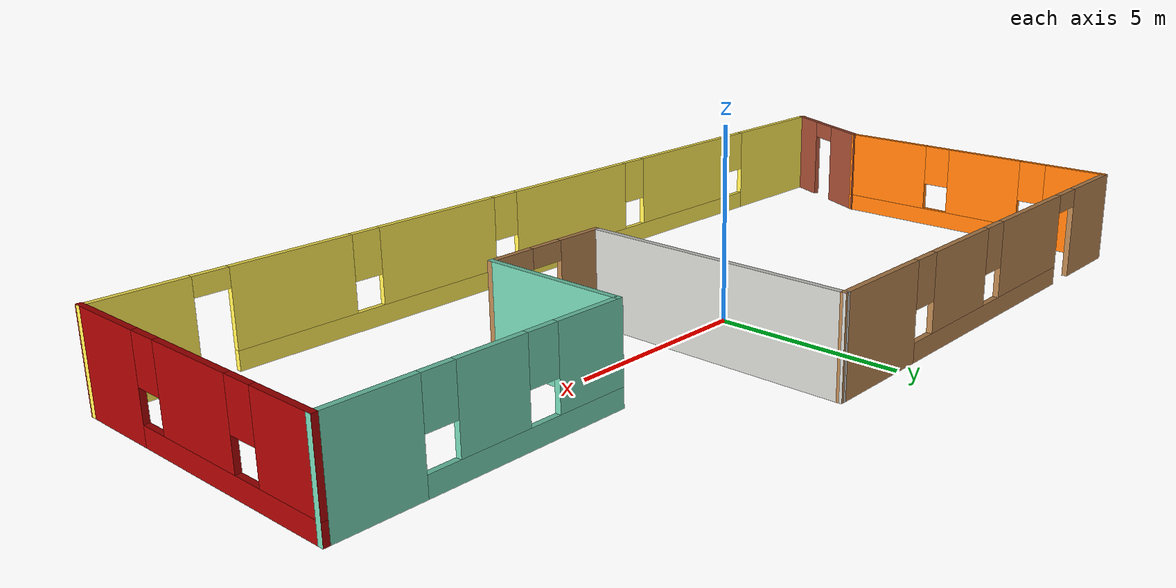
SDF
<?xml version='1.0'?>
<sdf version='1.7'>
  <model name='bilgehan_world_3'>
    <pose>0.261581 -0.716966 0 0 -0 0</pose>
    <link name='Wall_1'>
      <pose>0.011931 -5.67369 0 0 -0 0</pose>
      <visual name='Wall_1_Visual_0'>
        <pose>-10.9395 0 1.25 0 -0 0</pose>
        <geometry>
          <box>
            <size>3.62099 0.15 2.5</size>
          </box>
        </geometry>
        <material>
          <script>
            <uri>file://media/materials/scripts/gazebo.material</uri>
            <name>Gazebo/Grey</name>
          </script>
          <ambient>0.988235 0.913725 0.309804 1</ambient>
        </material>
        <meta>
          <layer>0</layer>
        </meta>
      </visual>
      <collision name='Wall_1_Collision_0'>
        <geometry>
          <box>
            <size>3.62099 0.15 2.5</size>
          </box>
        </geometry>
        <pose>-10.9395 0 1.25 0 -0 0</pose>
      </collision>
      <visual name='Wall_1_Visual_1'>
        <pose>11.5252 0 1.25 0 -0 0</pose>
        <geometry>
          <box>
            <size>2.44964 0.15 2.5</size>
          </box>
        </geometry>
        <material>
          <script>
            <uri>file://media/materials/scripts/gazebo.material</uri>
            <name>Gazebo/Grey</name>
          </script>
          <ambient>0.988235 0.913725 0.309804 1</ambient>
        </material>
        <meta>
          <layer>0</layer>
        </meta>
      </visual>
      <collision name='Wall_1_Collision_1'>
        <geometry>
          <box>
            <size>2.44964 0.15 2.5</size>
          </box>
        </geometry>
        <pose>11.5252 0 1.25 0 -0 0</pose>
      </collision>
      <visual name='Wall_1_Visual_2'>
        <pose>0.135676 0 0.25 0 -0 0</pose>
        <geometry>
          <box>
            <size>18.5294 0.15 0.5</size>
          </box>
        </geometry>
        <material>
          <script>
            <uri>file://media/materials/scripts/gazebo.material</uri>
            <name>Gazebo/Grey</name>
          </script>
          <ambient>0.988235 0.913725 0.309804 1</ambient>
        </material>
        <meta>
          <layer>0</layer>
        </meta>
      </visual>
      <collision name='Wall_1_Collision_2'>
        <geometry>
          <box>
            <size>18.5294 0.15 0.5</size>
          </box>
        </geometry>
        <pose>0.135676 0 0.25 0 -0 0</pose>
      </collision>
      <visual name='Wall_1_Visual_3'>
        <pose>-6.32102 0 1.5 0 -0 0</pose>
        <geometry>
          <box>
            <size>4.01597 0.15 2</size>
          </box>
        </geometry>
        <material>
          <script>
            <uri>file://media/materials/scripts/gazebo.material</uri>
            <name>Gazebo/Grey</name>
          </script>
          <ambient>0.988235 0.913725 0.309804 1</ambient>
        </material>
        <meta>
          <layer>0</layer>
        </meta>
      </visual>
      <collision name='Wall_1_Collision_3'>
        <geometry>
          <box>
            <size>4.01597 0.15 2</size>
          </box>
        </geometry>
        <pose>-6.32102 0 1.5 0 -0 0</pose>
      </collision>
      <visual name='Wall_1_Visual_4'>
        <pose>-1.34615 0 1.5 0 -0 0</pose>
        <geometry>
          <box>
            <size>4.33377 0.15 2</size>
          </box>
        </geometry>
        <material>
          <script>
            <uri>file://media/materials/scripts/gazebo.material</uri>
            <name>Gazebo/Grey</name>
          </script>
          <ambient>0.988235 0.913725 0.309804 1</ambient>
        </material>
        <meta>
          <layer>0</layer>
        </meta>
      </visual>
      <collision name='Wall_1_Collision_4'>
        <geometry>
          <box>
            <size>4.33377 0.15 2</size>
          </box>
        </geometry>
        <pose>-1.34615 0 1.5 0 -0 0</pose>
      </collision>
      <visual name='Wall_1_Visual_5'>
        <pose>3.48204 0 1.5 0 -0 0</pose>
        <geometry>
          <box>
            <size>3.72261 0.15 2</size>
          </box>
        </geometry>
        <material>
          <script>
            <uri>file://media/materials/scripts/gazebo.material</uri>
            <name>Gazebo/Grey</name>
          </script>
          <ambient>0.988235 0.913725 0.309804 1</ambient>
        </material>
        <meta>
          <layer>0</layer>
        </meta>
      </visual>
      <collision name='Wall_1_Collision_5'>
        <geometry>
          <box>
            <size>3.72261 0.15 2</size>
          </box>
        </geometry>
        <pose>3.48204 0 1.5 0 -0 0</pose>
      </collision>
      <visual name='Wall_1_Visual_6'>
        <pose>7.77185 0 1.5 0 -0 0</pose>
        <geometry>
          <box>
            <size>3.25702 0.15 2</size>
          </box>
        </geometry>
        <material>
          <script>
            <uri>file://media/materials/scripts/gazebo.material</uri>
            <name>Gazebo/Grey</name>
          </script>
          <ambient>0.988235 0.913725 0.309804 1</ambient>
        </material>
        <meta>
          <layer>0</layer>
        </meta>
      </visual>
      <collision name='Wall_1_Collision_6'>
        <geometry>
          <box>
            <size>3.25702 0.15 2</size>
          </box>
        </geometry>
        <pose>7.77185 0 1.5 0 -0 0</pose>
      </collision>
      <visual name='Wall_1_Visual_7'>
        <pose>-8.72901 0 1.9 0 -0 0</pose>
        <geometry>
          <box>
            <size>0.8 0.15 1.2</size>
          </box>
        </geometry>
        <material>
          <script>
            <uri>file://media/materials/scripts/gazebo.material</uri>
            <name>Gazebo/Grey</name>
          </script>
          <ambient>0.988235 0.913725 0.309804 1</ambient>
        </material>
        <meta>
          <layer>0</layer>
        </meta>
      </visual>
      <collision name='Wall_1_Collision_7'>
        <geometry>
          <box>
            <size>0.8 0.15 1.2</size>
          </box>
        </geometry>
        <pose>-8.72901 0 1.9 0 -0 0</pose>
      </collision>
      <visual name='Wall_1_Visual_8'>
        <pose>-3.91304 0 1.9 0 -0 0</pose>
        <geometry>
          <box>
            <size>0.8 0.15 1.2</size>
          </box>
        </geometry>
        <material>
          <script>
            <uri>file://media/materials/scripts/gazebo.material</uri>
            <name>Gazebo/Grey</name>
          </script>
          <ambient>0.988235 0.913725 0.309804 1</ambient>
        </material>
        <meta>
          <layer>0</layer>
        </meta>
      </visual>
      <collision name='Wall_1_Collision_8'>
        <geometry>
          <box>
            <size>0.8 0.15 1.2</size>
          </box>
        </geometry>
        <pose>-3.91304 0 1.9 0 -0 0</pose>
      </collision>
      <visual name='Wall_1_Visual_9'>
        <pose>1.22073 0 1.9 0 -0 0</pose>
        <geometry>
          <box>
            <size>0.8 0.15 1.2</size>
          </box>
        </geometry>
        <material>
          <script>
            <uri>file://media/materials/scripts/gazebo.material</uri>
            <name>Gazebo/Grey</name>
          </script>
          <ambient>0.988235 0.913725 0.309804 1</ambient>
        </material>
        <meta>
          <layer>0</layer>
        </meta>
      </visual>
      <collision name='Wall_1_Collision_9'>
        <geometry>
          <box>
            <size>0.8 0.15 1.2</size>
          </box>
        </geometry>
        <pose>1.22073 0 1.9 0 -0 0</pose>
      </collision>
      <visual name='Wall_1_Visual_10'>
        <pose>5.74334 0 1.9 0 -0 0</pose>
        <geometry>
          <box>
            <size>0.8 0.15 1.2</size>
          </box>
        </geometry>
        <material>
          <script>
            <uri>file://media/materials/scripts/gazebo.material</uri>
            <name>Gazebo/Grey</name>
          </script>
          <ambient>0.988235 0.913725 0.309804 1</ambient>
        </material>
        <meta>
          <layer>0</layer>
        </meta>
      </visual>
      <collision name='Wall_1_Collision_10'>
        <geometry>
          <box>
            <size>0.8 0.15 1.2</size>
          </box>
        </geometry>
        <pose>5.74334 0 1.9 0 -0 0</pose>
      </collision>
      <visual name='Wall_1_Visual_11'>
        <pose>9.85036 0 2.25 0 -0 0</pose>
        <geometry>
          <box>
            <size>0.9 0.15 0.5</size>
          </box>
        </geometry>
        <material>
          <script>
            <uri>file://media/materials/scripts/gazebo.material</uri>
            <name>Gazebo/Grey</name>
          </script>
          <ambient>0.988235 0.913725 0.309804 1</ambient>
        </material>
        <meta>
          <layer>0</layer>
        </meta>
      </visual>
      <collision name='Wall_1_Collision_11'>
        <geometry>
          <box>
            <size>0.9 0.15 0.5</size>
          </box>
        </geometry>
        <pose>9.85036 0 2.25 0 -0 0</pose>
      </collision>
    </link>
    <link name='Wall_11'>
      <pose>-11.3281 1.53331 0 0 -0 -1.5708</pose>
      <visual name='Wall_11_Visual_0'>
        <pose>-3.34478 0 1.25 0 -0 0</pose>
        <geometry>
          <box>
            <size>1.81045 0.15 2.5</size>
          </box>
        </geometry>
        <material>
          <script>
            <uri>file://media/materials/scripts/gazebo.material</uri>
            <name>Gazebo/Grey</name>
          </script>
          <ambient>0.996078 0.47451 0.0196078 1</ambient>
        </material>
        <meta>
          <layer>0</layer>
        </meta>
      </visual>
      <collision name='Wall_11_Collision_0'>
        <geometry>
          <box>
            <size>1.81045 0.15 2.5</size>
          </box>
        </geometry>
        <pose>-3.34478 0 1.25 0 -0 0</pose>
      </collision>
      <visual name='Wall_11_Visual_1'>
        <pose>0.905224 0 0.25 0 -0 0</pose>
        <geometry>
          <box>
            <size>6.68955 0.15 0.5</size>
          </box>
        </geometry>
        <material>
          <script>
            <uri>file://media/materials/scripts/gazebo.material</uri>
            <name>Gazebo/Grey</name>
          </script>
          <ambient>0.996078 0.47451 0.0196078 1</ambient>
        </material>
        <meta>
          <layer>0</layer>
        </meta>
      </visual>
      <collision name='Wall_11_Collision_1'>
        <geometry>
          <box>
            <size>6.68955 0.15 0.5</size>
          </box>
        </geometry>
        <pose>0.905224 0 0.25 0 -0 0</pose>
      </collision>
      <visual name='Wall_11_Visual_2'>
        <pose>-0.465446 0 1.5 0 -0 0</pose>
        <geometry>
          <box>
            <size>2.34821 0.15 2</size>
          </box>
        </geometry>
        <material>
          <script>
            <uri>file://media/materials/scripts/gazebo.material</uri>
            <name>Gazebo/Grey</name>
          </script>
          <ambient>0.996078 0.47451 0.0196078 1</ambient>
        </material>
        <meta>
          <layer>0</layer>
        </meta>
      </visual>
      <collision name='Wall_11_Collision_2'>
        <geometry>
          <box>
            <size>2.34821 0.15 2</size>
          </box>
        </geometry>
        <pose>-0.465446 0 1.5 0 -0 0</pose>
      </collision>
      <visual name='Wall_11_Visual_3'>
        <pose>2.87933 0 1.5 0 -0 0</pose>
        <geometry>
          <box>
            <size>2.74134 0.15 2</size>
          </box>
        </geometry>
        <material>
          <script>
            <uri>file://media/materials/scripts/gazebo.material</uri>
            <name>Gazebo/Grey</name>
          </script>
          <ambient>0.996078 0.47451 0.0196078 1</ambient>
        </material>
        <meta>
          <layer>0</layer>
        </meta>
      </visual>
      <collision name='Wall_11_Collision_3'>
        <geometry>
          <box>
            <size>2.74134 0.15 2</size>
          </box>
        </geometry>
        <pose>2.87933 0 1.5 0 -0 0</pose>
      </collision>
      <visual name='Wall_11_Visual_4'>
        <pose>-2.03955 0 1.9 0 -0 0</pose>
        <geometry>
          <box>
            <size>0.8 0.15 1.2</size>
          </box>
        </geometry>
        <material>
          <script>
            <uri>file://media/materials/scripts/gazebo.material</uri>
            <name>Gazebo/Grey</name>
          </script>
          <ambient>0.996078 0.47451 0.0196078 1</ambient>
        </material>
        <meta>
          <layer>0</layer>
        </meta>
      </visual>
      <collision name='Wall_11_Collision_4'>
        <geometry>
          <box>
            <size>0.8 0.15 1.2</size>
          </box>
        </geometry>
        <pose>-2.03955 0 1.9 0 -0 0</pose>
      </collision>
      <visual name='Wall_11_Visual_5'>
        <pose>1.10866 0 1.9 0 -0 0</pose>
        <geometry>
          <box>
            <size>0.8 0.15 1.2</size>
          </box>
        </geometry>
        <material>
          <script>
            <uri>file://media/materials/scripts/gazebo.material</uri>
            <name>Gazebo/Grey</name>
          </script>
          <ambient>0.996078 0.47451 0.0196078 1</ambient>
        </material>
        <meta>
          <layer>0</layer>
        </meta>
      </visual>
      <collision name='Wall_11_Collision_5'>
        <geometry>
          <box>
            <size>0.8 0.15 1.2</size>
          </box>
        </geometry>
        <pose>1.10866 0 1.9 0 -0 0</pose>
      </collision>
    </link>
    <link name='Wall_12'>
      <pose>-11.9956 -4.15769 0 0 -0 -1.98555</pose>
      <visual name='Wall_12_Visual_0'>
        <pose>-1.0289 0 1.25 0 -0 0</pose>
        <geometry>
          <box>
            <size>1.40508 0.15 2.5</size>
          </box>
        </geometry>
        <material>
          <script>
            <uri>file://media/materials/scripts/gazebo.material</uri>
            <name>Gazebo/Bricks</name>
          </script>
          <ambient>1 1 1 1</ambient>
        </material>
        <meta>
          <layer>0</layer>
        </meta>
      </visual>
      <collision name='Wall_12_Collision_0'>
        <geometry>
          <box>
            <size>1.40508 0.15 2.5</size>
          </box>
        </geometry>
        <pose>-1.0289 0 1.25 0 -0 0</pose>
      </collision>
      <visual name='Wall_12_Visual_1'>
        <pose>1.15254 0 1.25 0 -0 0</pose>
        <geometry>
          <box>
            <size>1.1578 0.15 2.5</size>
          </box>
        </geometry>
        <material>
          <script>
            <uri>file://media/materials/scripts/gazebo.material</uri>
            <name>Gazebo/Bricks</name>
          </script>
          <ambient>1 1 1 1</ambient>
        </material>
        <meta>
          <layer>0</layer>
        </meta>
      </visual>
      <collision name='Wall_12_Collision_1'>
        <geometry>
          <box>
            <size>1.1578 0.15 2.5</size>
          </box>
        </geometry>
        <pose>1.15254 0 1.25 0 -0 0</pose>
      </collision>
      <visual name='Wall_12_Visual_2'>
        <pose>0.123638 0 2.25 0 -0 0</pose>
        <geometry>
          <box>
            <size>0.9 0.15 0.5</size>
          </box>
        </geometry>
        <material>
          <script>
            <uri>file://media/materials/scripts/gazebo.material</uri>
            <name>Gazebo/Bricks</name>
          </script>
          <ambient>1 1 1 1</ambient>
        </material>
        <meta>
          <layer>0</layer>
        </meta>
      </visual>
      <collision name='Wall_12_Collision_2'>
        <geometry>
          <box>
            <size>0.9 0.15 0.5</size>
          </box>
        </geometry>
        <pose>0.123638 0 2.25 0 -0 0</pose>
      </collision>
    </link>
    <link name='Wall_2'>
      <pose>12.6869 -1.69365 0 0 -0 1.5708</pose>
      <visual name='Wall_2_Visual_0'>
        <pose>-2.95978 0 1.25 0 -0 0</pose>
        <geometry>
          <box>
            <size>2.26047 0.15 2.5</size>
          </box>
        </geometry>
        <material>
          <script>
            <uri>file://media/materials/scripts/gazebo.material</uri>
            <name>Gazebo/Grey</name>
          </script>
          <ambient>0.643137 0 0 1</ambient>
        </material>
        <meta>
          <layer>0</layer>
        </meta>
      </visual>
      <collision name='Wall_2_Collision_0'>
        <geometry>
          <box>
            <size>2.26047 0.15 2.5</size>
          </box>
        </geometry>
        <pose>-2.95978 0 1.25 0 -0 0</pose>
      </collision>
      <visual name='Wall_2_Visual_1'>
        <pose>1.13024 0 0.25 0 -0 0</pose>
        <geometry>
          <box>
            <size>5.91957 0.15 0.5</size>
          </box>
        </geometry>
        <material>
          <script>
            <uri>file://media/materials/scripts/gazebo.material</uri>
            <name>Gazebo/Grey</name>
          </script>
          <ambient>0.643137 0 0 1</ambient>
        </material>
        <meta>
          <layer>0</layer>
        </meta>
      </visual>
      <collision name='Wall_2_Collision_1'>
        <geometry>
          <box>
            <size>5.91957 0.15 0.5</size>
          </box>
        </geometry>
        <pose>1.13024 0 0.25 0 -0 0</pose>
      </collision>
      <visual name='Wall_2_Visual_2'>
        <pose>0.212152 0 1.5 0 -0 0</pose>
        <geometry>
          <box>
            <size>2.48339 0.15 2</size>
          </box>
        </geometry>
        <material>
          <script>
            <uri>file://media/materials/scripts/gazebo.material</uri>
            <name>Gazebo/Grey</name>
          </script>
          <ambient>0.643137 0 0 1</ambient>
        </material>
        <meta>
          <layer>0</layer>
        </meta>
      </visual>
      <collision name='Wall_2_Collision_2'>
        <geometry>
          <box>
            <size>2.48339 0.15 2</size>
          </box>
        </geometry>
        <pose>0.212152 0 1.5 0 -0 0</pose>
      </collision>
      <visual name='Wall_2_Visual_3'>
        <pose>3.17193 0 1.5 0 -0 0</pose>
        <geometry>
          <box>
            <size>1.83617 0.15 2</size>
          </box>
        </geometry>
        <material>
          <script>
            <uri>file://media/materials/scripts/gazebo.material</uri>
            <name>Gazebo/Grey</name>
          </script>
          <ambient>0.643137 0 0 1</ambient>
        </material>
        <meta>
          <layer>0</layer>
        </meta>
      </visual>
      <collision name='Wall_2_Collision_3'>
        <geometry>
          <box>
            <size>1.83617 0.15 2</size>
          </box>
        </geometry>
        <pose>3.17193 0 1.5 0 -0 0</pose>
      </collision>
      <visual name='Wall_2_Visual_4'>
        <pose>-1.42955 0 1.9 0 -0 0</pose>
        <geometry>
          <box>
            <size>0.8 0.15 1.2</size>
          </box>
        </geometry>
        <material>
          <script>
            <uri>file://media/materials/scripts/gazebo.material</uri>
            <name>Gazebo/Grey</name>
          </script>
          <ambient>0.643137 0 0 1</ambient>
        </material>
        <meta>
          <layer>0</layer>
        </meta>
      </visual>
      <collision name='Wall_2_Collision_4'>
        <geometry>
          <box>
            <size>0.8 0.15 1.2</size>
          </box>
        </geometry>
        <pose>-1.42955 0 1.9 0 -0 0</pose>
      </collision>
      <visual name='Wall_2_Visual_5'>
        <pose>1.85385 0 1.9 0 -0 0</pose>
        <geometry>
          <box>
            <size>0.8 0.15 1.2</size>
          </box>
        </geometry>
        <material>
          <script>
            <uri>file://media/materials/scripts/gazebo.material</uri>
            <name>Gazebo/Grey</name>
          </script>
          <ambient>0.643137 0 0 1</ambient>
        </material>
        <meta>
          <layer>0</layer>
        </meta>
      </visual>
      <collision name='Wall_2_Collision_5'>
        <geometry>
          <box>
            <size>0.8 0.15 1.2</size>
          </box>
        </geometry>
        <pose>1.85385 0 1.9 0 -0 0</pose>
      </collision>
    </link>
    <link name='Wall_3'>
      <pose>9.01193 2.32137 0 0 -0 3.14159</pose>
      <visual name='Wall_3_Visual_0'>
        <pose>-2.61825 0 1.25 0 -0 0</pose>
        <geometry>
          <box>
            <size>2.2635 0.15 2.5</size>
          </box>
        </geometry>
        <material>
          <script>
            <uri>file://media/materials/scripts/gazebo.material</uri>
            <name>Gazebo/Grey</name>
          </script>
          <ambient>0.435294 0.796078 0.67451 1</ambient>
        </material>
        <meta>
          <layer>0</layer>
        </meta>
      </visual>
      <collision name='Wall_3_Collision_0'>
        <geometry>
          <box>
            <size>2.2635 0.15 2.5</size>
          </box>
        </geometry>
        <pose>-2.61825 0 1.25 0 -0 0</pose>
      </collision>
      <visual name='Wall_3_Visual_1'>
        <pose>1.13175 0 0.25 0 -0 0</pose>
        <geometry>
          <box>
            <size>5.2365 0.15 0.5</size>
          </box>
        </geometry>
        <material>
          <script>
            <uri>file://media/materials/scripts/gazebo.material</uri>
            <name>Gazebo/Grey</name>
          </script>
          <ambient>0.435294 0.796078 0.67451 1</ambient>
        </material>
        <meta>
          <layer>0</layer>
        </meta>
      </visual>
      <collision name='Wall_3_Collision_1'>
        <geometry>
          <box>
            <size>5.2365 0.15 0.5</size>
          </box>
        </geometry>
        <pose>1.13175 0 0.25 0 -0 0</pose>
      </collision>
      <visual name='Wall_3_Visual_2'>
        <pose>0.2015 0 1.5 0 -0 0</pose>
        <geometry>
          <box>
            <size>1.776 0.15 2</size>
          </box>
        </geometry>
        <material>
          <script>
            <uri>file://media/materials/scripts/gazebo.material</uri>
            <name>Gazebo/Grey</name>
          </script>
          <ambient>0.435294 0.796078 0.67451 1</ambient>
        </material>
        <meta>
          <layer>0</layer>
        </meta>
      </visual>
      <collision name='Wall_3_Collision_2'>
        <geometry>
          <box>
            <size>1.776 0.15 2</size>
          </box>
        </geometry>
        <pose>0.2015 0 1.5 0 -0 0</pose>
      </collision>
      <visual name='Wall_3_Visual_3'>
        <pose>2.81975 0 1.5 0 -0 0</pose>
        <geometry>
          <box>
            <size>1.8605 0.15 2</size>
          </box>
        </geometry>
        <material>
          <script>
            <uri>file://media/materials/scripts/gazebo.material</uri>
            <name>Gazebo/Grey</name>
          </script>
          <ambient>0.435294 0.796078 0.67451 1</ambient>
        </material>
        <meta>
          <layer>0</layer>
        </meta>
      </visual>
      <collision name='Wall_3_Collision_3'>
        <geometry>
          <box>
            <size>1.8605 0.15 2</size>
          </box>
        </geometry>
        <pose>2.81975 0 1.5 0 -0 0</pose>
      </collision>
      <visual name='Wall_3_Visual_4'>
        <pose>-1.0865 0 1.9 0 -0 0</pose>
        <geometry>
          <box>
            <size>0.8 0.15 1.2</size>
          </box>
        </geometry>
        <material>
          <script>
            <uri>file://media/materials/scripts/gazebo.material</uri>
            <name>Gazebo/Grey</name>
          </script>
          <ambient>0.435294 0.796078 0.67451 1</ambient>
        </material>
        <meta>
          <layer>0</layer>
        </meta>
      </visual>
      <collision name='Wall_3_Collision_4'>
        <geometry>
          <box>
            <size>0.8 0.15 1.2</size>
          </box>
        </geometry>
        <pose>-1.0865 0 1.9 0 -0 0</pose>
      </collision>
      <visual name='Wall_3_Visual_5'>
        <pose>1.4895 0 1.9 0 -0 0</pose>
        <geometry>
          <box>
            <size>0.8 0.15 1.2</size>
          </box>
        </geometry>
        <material>
          <script>
            <uri>file://media/materials/scripts/gazebo.material</uri>
            <name>Gazebo/Grey</name>
          </script>
          <ambient>0.435294 0.796078 0.67451 1</ambient>
        </material>
        <meta>
          <layer>0</layer>
        </meta>
      </visual>
      <collision name='Wall_3_Collision_5'>
        <geometry>
          <box>
            <size>0.8 0.15 1.2</size>
          </box>
        </geometry>
        <pose>1.4895 0 1.9 0 -0 0</pose>
      </collision>
    </link>
    <link name='Wall_4'>
      <collision name='Wall_4_Collision'>
        <geometry>
          <box>
            <size>4 0.15 2.5</size>
          </box>
        </geometry>
        <pose>0 0 1.25 0 -0 0</pose>
      </collision>
      <visual name='Wall_4_Visual'>
        <pose>0 0 1.25 0 -0 0</pose>
        <geometry>
          <box>
            <size>4 0.15 2.5</size>
          </box>
        </geometry>
        <material>
          <script>
            <uri>file://media/materials/scripts/gazebo.material</uri>
            <name>Gazebo/Grey</name>
          </script>
          <ambient>0.435294 0.796078 0.67451 1</ambient>
        </material>
        <meta>
          <layer>0</layer>
        </meta>
      </visual>
      <pose>5.33693 0.39637 0 0 -0 -1.5708</pose>
    </link>
    <link name='Wall_5'>
      <pose>3.66193 -1.52863 0 0 -0 3.14159</pose>
      <visual name='Wall_5_Visual_0'>
        <pose>-1.1165 0 1.25 0 -0 0</pose>
        <geometry>
          <box>
            <size>1.267 0.15 2.5</size>
          </box>
        </geometry>
        <material>
          <script>
            <uri>file://media/materials/scripts/gazebo.material</uri>
            <name>Gazebo/Wood</name>
          </script>
          <ambient>1 1 1 1</ambient>
        </material>
        <meta>
          <layer>0</layer>
        </meta>
      </visual>
      <collision name='Wall_5_Collision_0'>
        <geometry>
          <box>
            <size>1.267 0.15 2.5</size>
          </box>
        </geometry>
        <pose>-1.1165 0 1.25 0 -0 0</pose>
      </collision>
      <visual name='Wall_5_Visual_1'>
        <pose>1.0835 0 1.25 0 -0 0</pose>
        <geometry>
          <box>
            <size>1.333 0.15 2.5</size>
          </box>
        </geometry>
        <material>
          <script>
            <uri>file://media/materials/scripts/gazebo.material</uri>
            <name>Gazebo/Wood</name>
          </script>
          <ambient>1 1 1 1</ambient>
        </material>
        <meta>
          <layer>0</layer>
        </meta>
      </visual>
      <collision name='Wall_5_Collision_1'>
        <geometry>
          <box>
            <size>1.333 0.15 2.5</size>
          </box>
        </geometry>
        <pose>1.0835 0 1.25 0 -0 0</pose>
      </collision>
      <visual name='Wall_5_Visual_2'>
        <pose>-0.033 0 2.25 0 -0 0</pose>
        <geometry>
          <box>
            <size>0.9 0.15 0.5</size>
          </box>
        </geometry>
        <material>
          <script>
            <uri>file://media/materials/scripts/gazebo.material</uri>
            <name>Gazebo/Wood</name>
          </script>
          <ambient>1 1 1 1</ambient>
        </material>
        <meta>
          <layer>0</layer>
        </meta>
      </visual>
      <collision name='Wall_5_Collision_2'>
        <geometry>
          <box>
            <size>0.9 0.15 0.5</size>
          </box>
        </geometry>
        <pose>-0.033 0 2.25 0 -0 0</pose>
      </collision>
    </link>
    <link name='Wall_6'>
      <collision name='Wall_6_Collision'>
        <geometry>
          <box>
            <size>7.38702 0.15 2.5</size>
          </box>
        </geometry>
        <pose>0 0 1.25 0 -0 0</pose>
      </collision>
      <visual name='Wall_6_Visual'>
        <pose>0 0 1.25 0 -0 0</pose>
        <geometry>
          <box>
            <size>7.38702 0.15 2.5</size>
          </box>
        </geometry>
        <material>
          <script>
            <uri>file://media/materials/scripts/gazebo.material</uri>
            <name>Gazebo/CeilingTiled</name>
          </script>
          <ambient>0.643137 0 0 1</ambient>
        </material>
        <meta>
          <layer>0</layer>
        </meta>
      </visual>
      <pose>2.00442 2.08984 0 0 -0 1.56596</pose>
    </link>
    <link name='Wall_7'>
      <pose>-4.65309 5.70831 0 0 -0 3.14159</pose>
      <visual name='Wall_7_Visual_0'>
        <pose>-5.26425 0 1.25 0 -0 0</pose>
        <geometry>
          <box>
            <size>2.9715 0.15 2.5</size>
          </box>
        </geometry>
        <material>
          <script>
            <uri>file://media/materials/scripts/gazebo.material</uri>
            <name>Gazebo/Wood</name>
          </script>
          <ambient>1 1 1 1</ambient>
        </material>
        <meta>
          <layer>0</layer>
        </meta>
      </visual>
      <collision name='Wall_7_Collision_0'>
        <geometry>
          <box>
            <size>2.9715 0.15 2.5</size>
          </box>
        </geometry>
        <pose>-5.26425 0 1.25 0 -0 0</pose>
      </collision>
      <visual name='Wall_7_Visual_1'>
        <pose>5.64825 0 1.25 0 -0 0</pose>
        <geometry>
          <box>
            <size>2.2035 0.15 2.5</size>
          </box>
        </geometry>
        <material>
          <script>
            <uri>file://media/materials/scripts/gazebo.material</uri>
            <name>Gazebo/Wood</name>
          </script>
          <ambient>1 1 1 1</ambient>
        </material>
        <meta>
          <layer>0</layer>
        </meta>
      </visual>
      <collision name='Wall_7_Collision_1'>
        <geometry>
          <box>
            <size>2.2035 0.15 2.5</size>
          </box>
        </geometry>
        <pose>5.64825 0 1.25 0 -0 0</pose>
      </collision>
      <visual name='Wall_7_Visual_2'>
        <pose>-0.066 0 0.25 0 -0 0</pose>
        <geometry>
          <box>
            <size>7.425 0.15 0.5</size>
          </box>
        </geometry>
        <material>
          <script>
            <uri>file://media/materials/scripts/gazebo.material</uri>
            <name>Gazebo/Wood</name>
          </script>
          <ambient>1 1 1 1</ambient>
        </material>
        <meta>
          <layer>0</layer>
        </meta>
      </visual>
      <collision name='Wall_7_Collision_2'>
        <geometry>
          <box>
            <size>7.425 0.15 0.5</size>
          </box>
        </geometry>
        <pose>-0.066 0 0.25 0 -0 0</pose>
      </collision>
      <visual name='Wall_7_Visual_3'>
        <pose>-1.711 0 1.5 0 -0 0</pose>
        <geometry>
          <box>
            <size>2.535 0.15 2</size>
          </box>
        </geometry>
        <material>
          <script>
            <uri>file://media/materials/scripts/gazebo.material</uri>
            <name>Gazebo/Wood</name>
          </script>
          <ambient>1 1 1 1</ambient>
        </material>
        <meta>
          <layer>0</layer>
        </meta>
      </visual>
      <collision name='Wall_7_Collision_3'>
        <geometry>
          <box>
            <size>2.535 0.15 2</size>
          </box>
        </geometry>
        <pose>-1.711 0 1.5 0 -0 0</pose>
      </collision>
      <visual name='Wall_7_Visual_4'>
        <pose>2.0015 0 1.5 0 -0 0</pose>
        <geometry>
          <box>
            <size>3.29 0.15 2</size>
          </box>
        </geometry>
        <material>
          <script>
            <uri>file://media/materials/scripts/gazebo.material</uri>
            <name>Gazebo/Wood</name>
          </script>
          <ambient>1 1 1 1</ambient>
        </material>
        <meta>
          <layer>0</layer>
        </meta>
      </visual>
      <collision name='Wall_7_Collision_4'>
        <geometry>
          <box>
            <size>3.29 0.15 2</size>
          </box>
        </geometry>
        <pose>2.0015 0 1.5 0 -0 0</pose>
      </collision>
      <visual name='Wall_7_Visual_5'>
        <pose>-3.3785 0 1.9 0 -0 0</pose>
        <geometry>
          <box>
            <size>0.8 0.15 1.2</size>
          </box>
        </geometry>
        <material>
          <script>
            <uri>file://media/materials/scripts/gazebo.material</uri>
            <name>Gazebo/Wood</name>
          </script>
          <ambient>1 1 1 1</ambient>
        </material>
        <meta>
          <layer>0</layer>
        </meta>
      </visual>
      <collision name='Wall_7_Collision_5'>
        <geometry>
          <box>
            <size>0.8 0.15 1.2</size>
          </box>
        </geometry>
        <pose>-3.3785 0 1.9 0 -0 0</pose>
      </collision>
      <visual name='Wall_7_Visual_6'>
        <pose>-0.0435 0 1.9 0 -0 0</pose>
        <geometry>
          <box>
            <size>0.8 0.15 1.2</size>
          </box>
        </geometry>
        <material>
          <script>
            <uri>file://media/materials/scripts/gazebo.material</uri>
            <name>Gazebo/Wood</name>
          </script>
          <ambient>1 1 1 1</ambient>
        </material>
        <meta>
          <layer>0</layer>
        </meta>
      </visual>
      <collision name='Wall_7_Collision_6'>
        <geometry>
          <box>
            <size>0.8 0.15 1.2</size>
          </box>
        </geometry>
        <pose>-0.0435 0 1.9 0 -0 0</pose>
      </collision>
      <visual name='Wall_7_Visual_7'>
        <pose>4.0965 0 2.25 0 -0 0</pose>
        <geometry>
          <box>
            <size>0.9 0.15 0.5</size>
          </box>
        </geometry>
        <material>
          <script>
            <uri>file://media/materials/scripts/gazebo.material</uri>
            <name>Gazebo/Wood</name>
          </script>
          <ambient>1 1 1 1</ambient>
        </material>
        <meta>
          <layer>0</layer>
        </meta>
      </visual>
      <collision name='Wall_7_Collision_7'>
        <geometry>
          <box>
            <size>0.9 0.15 0.5</size>
          </box>
        </geometry>
        <pose>4.0965 0 2.25 0 -0 0</pose>
      </collision>
    </link>
    <static>1</static>
  </model>
</sdf>
